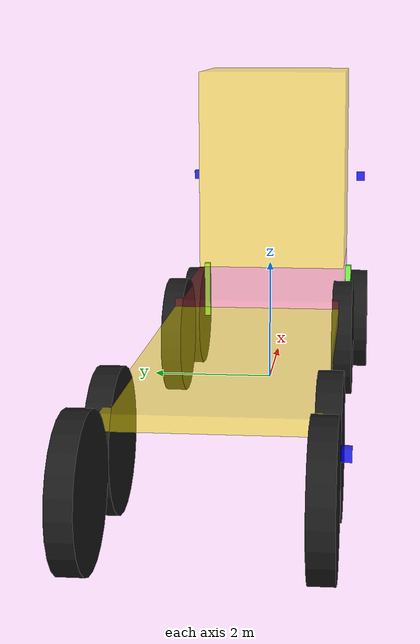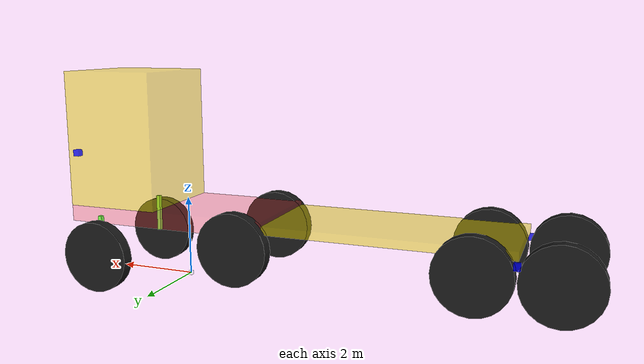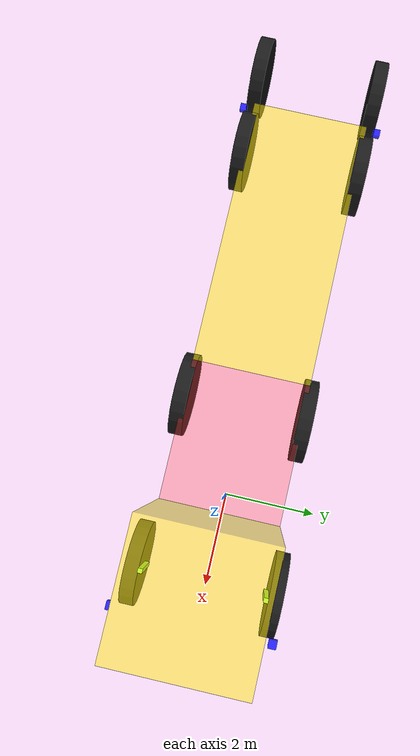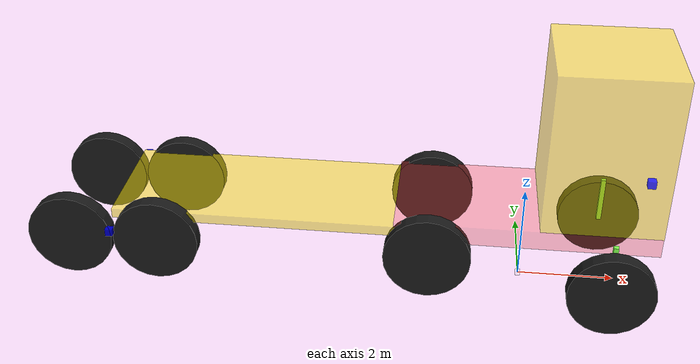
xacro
<?xml version="1.0"?>

<!-- Robot name -->
<robot name="at" xmlns:xacro="http://ros.org/wiki/xacro">

<!-- Included URDF Files -->
<xacro:include filename="$(find at_gazebo)/gazebo/at.gazebo" />

<!-- user input dimensions     -->
<xacro:property name="robot"    value="at" />
<xacro:property name="pi"       value="3.141592" />
<xacro:property name="chassis_length"   value="5.25" />
<xacro:property name="chassis_width"    value="2.495" />
<xacro:property name="chassis_height"   value="0.4" />
<xacro:property name="chassis_mass"   value="2300." />

<xacro:property name="cabinet_length"   value="2.375" />
<xacro:property name="cabinet_width"   value="${chassis_width}" />
<xacro:property name="cabinet_height"   value="3.353" />
<xacro:property name="cabinet_mass"   value="1000." />

<xacro:property name="trailer_length"   value="6" />
<xacro:property name="trailer_width"   value="${chassis_width}" />
<xacro:property name="trailer_height"   value=".2" />
<xacro:property name="trailer_mass"   value="2300." />

<xacro:property name="wheel_width"    value="0.3" />
<xacro:property name="wheel_radius"   value="0.882" />
<xacro:property name="wheel_mass"   value="100" />

<xacro:property name="trailer_wheel_width"    value="0.3" />
<xacro:property name="trailer_wheel_radius"   value="0.882" />
<xacro:property name="trailer_wheel_mass"   value="100" />

<xacro:property name="lidar_mass"   value="1" />
<xacro:property name="lidar_side"   value="0.15" />

<xacro:property name="wheel_hinge_width"   value="0.1" />
<xacro:property name="wheel_hinge_mass"   value="10" />

<xacro:property name="camera_mass"   value="1" />
<xacro:property name="camera_side"   value="0.15" />

<!-- derived dimensions -->
<xacro:property name="wheel_hinge_height"   value="${wheel_radius+0.1}" />
<xacro:property name="chassis_floor_clearance"   value="${wheel_radius+wheel_hinge_height-chassis_height}" />

<!-- ~~~~~~~~~~~~~~~~~~~~~~~ chassis AND cabinet ~~~~~~~~~~~~~~~~~~~~~~~~~~~~~~~~~~~~~~~~ -->

<!-- AT Footprint Link (AT footprint on ground)-->
<link name="${robot}_footprint">
    <visual>
        <origin xyz="0 0 0" rpy="0 0 0"/>
        <geometry>
            <box size="0.1 0.1 0.1"/>
        </geometry>
        <material name="white">
            <color rgba="1 1 1 0.1"/>
        </material>
    </visual>
</link>

<!-- AT Base Link (AT chassis)-->
<joint name="${robot}_footprint_2_base" type="fixed" >
    <parent link="${robot}_footprint"/>
    <child link="${robot}_chassis"/>
    <origin xyz="0 0 ${chassis_floor_clearance+0.5*chassis_height}" rpy="0 0 0"/>
</joint>
<link name="${robot}_chassis">
    <visual>
        <origin xyz="0 0 0" rpy="0 0 0"/>
        <geometry>
            <box size="${chassis_length} ${chassis_width} ${chassis_height}"/>
        </geometry>
        <material name="reddish">
            <color rgba="1 0.2 0.2 0.3"/>
        </material>
    </visual>

    <collision>
        <origin xyz="0 0 0" rpy="0 0 0"/>
        <geometry>
            <box size="${chassis_length} ${chassis_width} ${chassis_height}"/>
        </geometry>
    </collision>

    <inertial>
        <mass value="${chassis_mass}" />
        <origin xyz="0 0 0" rpy="0 0 0"/>
        <inertia ixx="${0.083*chassis_mass*(chassis_width*chassis_width+chassis_height*chassis_height)}"
                 ixy="0.0"
                 ixz="0.0"
                 iyy="${0.083*chassis_mass*(chassis_length*chassis_length+chassis_height*chassis_height)}"
                 iyz="0.0"
                 izz="${0.083*chassis_mass*(chassis_length*chassis_length+chassis_width*chassis_width)}"/>
    </inertial>
</link>

<!-- AT top cabinet-->
<joint name="${robot}_base_2_platform" type="fixed" >
    <parent link="${robot}_chassis"/>
    <child link="${robot}_cabinet"/>
    <origin xyz="${0.275*chassis_length} 0 ${0.5*chassis_height + 0.5*cabinet_height}" rpy="0 0 0"/>
</joint>
<link name="${robot}_cabinet">
    <visual>
        <origin xyz="0 0 0" rpy="0 0 0"/>
        <geometry>
            <box size="${cabinet_length} ${cabinet_width} ${cabinet_height}"/>
        </geometry>
        <material name="yellow">
            <color rgba="1.0 0.9 0.0 0.5"/>
        </material>
    </visual>

    <collision>
        <origin xyz="0 0 0" rpy="0 0 0"/>
        <geometry>
            <box size="${cabinet_length} ${cabinet_width} ${cabinet_height}"/>
        </geometry>
    </collision>

    <inertial>
        <mass value="${chassis_mass}" />
        <origin xyz="0 0 0" rpy="0 0 0"/>
        <inertia ixx="${0.083*cabinet_mass*(cabinet_width*cabinet_width+cabinet_height*cabinet_height)}"
                    ixy="0.0"
                    ixz="0.0"
                    iyy="${0.083*cabinet_mass*(cabinet_length*cabinet_length+cabinet_height*cabinet_height)}"
                    iyz="0.0"
                    izz="${0.083*cabinet_mass*(cabinet_length*cabinet_length+cabinet_width*cabinet_width)}" />
    </inertial>
</link>

<!-- AT trailer-->
<joint name="${robot}_trailer" type="fixed" >
    <parent link="${robot}_chassis"/>
    <child link="${robot}_trailer"/>
    <origin xyz="-${1.03*chassis_length} 0 0" rpy="0 0 0"/>
</joint>
<link name="${robot}_trailer">
    <visual>
        <origin xyz="0 0 0" rpy="0 0 0"/>
        <geometry>
            <box size="${trailer_length} ${trailer_width} ${trailer_height}"/>
        </geometry>
        <material name="yellow">
            <color rgba="1.0 0.9 0.0 0.5"/>
        </material>
    </visual>

    <collision>
        <origin xyz="0 0 0" rpy="0 0 0"/>
        <geometry>
            <box size="${trailer_length} ${trailer_width} ${trailer_height}"/>
        </geometry>
    </collision>

    <inertial>
        <mass value="${chassis_mass}" />
        <origin xyz="0 0 0" rpy="0 0 0"/>
        <inertia ixx="${0.083*trailer_mass*(trailer_width*trailer_width+trailer_height*trailer_height)}"
                    ixy="0.0"
                    ixz="0.0"
                    iyy="${0.083*trailer_mass*(trailer_length*trailer_length+trailer_height*trailer_height)}"
                    iyz="0.0"
                    izz="${0.083*trailer_mass*(trailer_length*trailer_length+trailer_width*trailer_width)}" />
    </inertial>
</link>

<!-- ~~~~~~~~~~~~~~~~~~~~~~~~~~~~~~ WHEELS ~~~~~~~~~~~~~~~~~~~~~~~~~~~~~~~~~~~~~~~~~~~~ -->

<!-- front left hinge-->
<joint name="${robot}_fl_hinge" type="revolute" >
    <parent link="${robot}_chassis"/>
    <child link="${robot}_fl_hinge"/>
    <axis xyz="0 0 1"/>
    <limit effort="10000.0" lower="${-0.3*pi}" upper="${0.3*pi}" velocity="0.5"/>
    <origin xyz="${0.5*chassis_length-wheel_radius} ${0.5*chassis_width+0.5*wheel_hinge_width} ${-0.5*wheel_hinge_height}" rpy="0 0 0"/>
</joint>
<link name="${robot}_fl_hinge">
    <visual>
        <origin xyz="0 0 0" rpy="0 0 0"/>
        <geometry>
            <box size="${wheel_hinge_width} ${wheel_hinge_width} ${wheel_hinge_height}"/>
        </geometry>
        <material name="green2">
            <color rgba="0.5 1 0.3 1"/>
        </material>
    </visual>

    <inertial>
        <mass value="${wheel_hinge_mass}" />
        <origin xyz="0 0 0" rpy="0 0 0"/>
        <inertia ixx="${0.083*chassis_mass*(wheel_hinge_width*wheel_hinge_width+wheel_hinge_height*wheel_hinge_height)}"
                    ixy="0.0"
                    ixz="0.0"
                    iyy="${0.083*chassis_mass*(wheel_hinge_width*wheel_hinge_width+wheel_hinge_height*wheel_hinge_height)}"
                    iyz="0.0"
                    izz="${0.083*chassis_mass*(wheel_hinge_width*wheel_hinge_width+wheel_hinge_width*wheel_hinge_width)}" />
    </inertial>
</link>

<!-- front left wheel-->
<joint name="${robot}_fl_wheel" type="continuous" >
    <parent link="${robot}_fl_hinge"/>
    <child link="${robot}_fl_wheel"/>
    <axis xyz="0 0 1"/>
    <origin xyz="0 ${0.5*wheel_hinge_width+0.5*wheel_width} ${-0.5*wheel_hinge_height}" rpy="${0.5*pi} 0 0"/>
</joint>
<link name="${robot}_fl_wheel">
    <visual>
        <origin xyz="0 0 0" rpy="0 0 0"/>
        <geometry>
            <cylinder length="${wheel_width}" radius="${wheel_radius}"/>
        </geometry>
        <material name="grey">
            <color rgba="0.1 0.1 0.1 1"/>
        </material>
    </visual>

    <collision>
        <origin xyz="0 0 0" rpy="0 0 0"/>
        <geometry>
            <cylinder length="${wheel_width}" radius="${wheel_radius}"/>
        </geometry>
    </collision>

    <inertial>
        <mass value="${wheel_mass}" />
        <origin xyz="0 0 0" rpy="0 0 0"/>
        <inertia ixx="${0.083*wheel_mass*(3*wheel_radius*wheel_radius*wheel_width)}"
                    ixy="0.0"
                    ixz="0.0"
                    iyy="${0.083*wheel_mass*(3*wheel_radius*wheel_radius*wheel_width)}"
                    iyz="0.0"
                    izz="${0.5*wheel_mass*wheel_radius*wheel_radius}" />
    </inertial>
</link>

<!-- front right hinge-->
<joint name="${robot}_fr_hinge" type="revolute" >
    <parent link="${robot}_chassis"/>
    <child link="${robot}_fr_hinge"/>
    <axis xyz="0 0 1"/>
    <limit effort="10000.0" lower="${-0.3*pi}" upper="${0.3*pi}" velocity="0.5"/>
    <origin xyz="${0.5*chassis_length-wheel_radius} ${-0.5*chassis_width-0.5*wheel_hinge_width} ${-0.5*wheel_hinge_height}" rpy="0 0 0"/>
</joint>
<link name="${robot}_fr_hinge">
    <visual>
        <origin xyz="0 0 0" rpy="0 0 0"/>
        <geometry>
            <box size="${wheel_hinge_width} ${wheel_hinge_width} ${wheel_hinge_height}"/>
        </geometry>
        <material name="green2">
            <color rgba="0.5 1 0.3 1"/>
        </material>
    </visual>

    <inertial>
        <mass value="${wheel_hinge_mass}" />
        <origin xyz="0 0 0" rpy="0 0 0"/>
        <inertia ixx="${0.083*chassis_mass*(wheel_hinge_width*wheel_hinge_width+wheel_hinge_height*wheel_hinge_height)}"
                    ixy="0.0"
                    ixz="0.0"
                    iyy="${0.083*chassis_mass*(wheel_hinge_width*wheel_hinge_width+wheel_hinge_height*wheel_hinge_height)}"
                    iyz="0.0"
                    izz="${0.083*chassis_mass*(wheel_hinge_width*wheel_hinge_width+wheel_hinge_width*wheel_hinge_width)}" />
    </inertial>

</link>

<!-- front right wheel-->
<joint name="${robot}_fr_wheel" type="continuous" >
    <parent link="${robot}_fr_hinge"/>
    <child link="${robot}_fr_wheel"/>
    <axis xyz="0 0 1"/>
    <origin xyz="0 ${-0.5*wheel_hinge_width-0.5*wheel_width} ${-0.5*wheel_hinge_height}" rpy="${0.5*pi} 0 0"/>
</joint>
<link name="${robot}_fr_wheel">
    <visual>
        <origin xyz="0 0 0" rpy="0 0 0"/>
        <geometry>
            <cylinder length="${wheel_width}" radius="${wheel_radius}"/>
        </geometry>
        <material name="grey">
            <color rgba="0.1 0.1 0.1 1"/>
        </material>
    </visual>

    <collision>
        <origin xyz="0 0 0" rpy="0 0 0"/>
        <geometry>
            <cylinder length="${wheel_width}" radius="${wheel_radius}"/>
        </geometry>
    </collision>

    <inertial>
        <mass value="${wheel_mass}" />
        <origin xyz="0 0 0" rpy="0 0 0"/>
        <inertia ixx="${0.083*wheel_mass*(3*wheel_radius*wheel_radius*wheel_width)}"
                    ixy="0.0"
                    ixz="0.0"
                    iyy="${0.083*wheel_mass*(3*wheel_radius*wheel_radius*wheel_width)}"
                    iyz="0.0"
                    izz="${0.5*wheel_mass*wheel_radius*wheel_radius}" />
    </inertial>
</link>

<!--~~~~~~~~~~~~~~~~~~~~~~~~~~~~~~~~~~~CHASSIS REAR WHEELS AND TRAILER WHEELS~~~~~~~~~~~~~~~~~~~~~~~~~~~~~~~~-->

<!-- chassis left wheel-->
<joint name="${robot}__rl_wheel" type="continuous" >
    <parent link="${robot}_chassis"/>
    <child link="${robot}_rl_wheel"/>
    <axis xyz="0 0 1"/>
    <origin xyz="${-0.2*chassis_length-wheel_radius} ${0.5*chassis_width+0.5*wheel_hinge_width} ${-0.5*wheel_hinge_height}" rpy="${0.5*pi} 0 0"/>
</joint>
<link name="${robot}_rl_wheel">
    <visual>
        <origin xyz="0 0 0" rpy="0 0 0"/>
        <geometry>
            <cylinder length="${wheel_width}" radius="${wheel_radius}"/>
        </geometry>
        <material name="grey">
            <color rgba="0.1 0.1 0.1 1"/>
        </material>
    </visual>

    <collision>
        <origin xyz="0 0 0" rpy="0 0 0"/>
        <geometry>
            <cylinder length="${wheel_width}" radius="${wheel_radius}"/>
        </geometry>
    </collision>

    <inertial>
        <mass value="${wheel_mass}" />
        <origin xyz="0 0 0" rpy="0 0 0"/>
        <inertia ixx="${0.083*wheel_mass*(3*wheel_radius*wheel_radius*wheel_width)}"
                    ixy="0.0"
                    ixz="0.0"
                    iyy="${0.083*wheel_mass*(3*wheel_radius*wheel_radius*wheel_width)}"
                    iyz="0.0"
                    izz="${0.5*wheel_mass*wheel_radius*wheel_radius}" />
    </inertial>
</link>

<!-- chassis right wheel-->
<joint name="${robot}_rr_wheel" type="continuous" >
    <parent link="${robot}_chassis"/>
    <child link="${robot}_rr_wheel"/>
    <axis xyz="0 0 1"/>
    <origin xyz="${-0.2*chassis_length-wheel_radius} ${-0.5*chassis_width-0.5*wheel_hinge_width} ${-0.5*wheel_hinge_height}" rpy="${0.5*pi} 0 0"/>

</joint>
<link name="${robot}_rr_wheel">
    <visual>
        <origin xyz="0 0 0" rpy="0 0 0"/>
        <geometry>
            <cylinder length="${wheel_width}" radius="${wheel_radius}"/>
        </geometry>
        <material name="grey">
            <color rgba="0.1 0.1 0.1 1"/>
        </material>
    </visual>

    <collision>
        <origin xyz="0 0 0" rpy="0 0 0"/>
        <geometry>
            <cylinder length="${wheel_width}" radius="${wheel_radius}"/>
        </geometry>
    </collision>

    <inertial>
        <mass value="${wheel_mass}" />
        <origin xyz="0 0 0" rpy="0 0 0"/>
        <inertia ixx="${0.083*wheel_mass*(3*wheel_radius*wheel_radius*wheel_width)}"
                    ixy="0.0"
                    ixz="0.0"
                    iyy="${0.083*wheel_mass*(3*wheel_radius*wheel_radius*wheel_width)}"
                    iyz="0.0"
                    izz="${0.5*wheel_mass*wheel_radius*wheel_radius}" />
    </inertial>
</link>

<!-- trailer left wheel-->
<joint name="${robot}_trailer_fl_wheel" type="continuous" >
    <parent link="${robot}_trailer"/>
    <child link="${robot}_trailer_fl_wheel"/>
    <axis xyz="0 0 1"/>
    <origin xyz="${-0.2*trailer_length-wheel_radius} ${0.5*trailer_width+0.5*wheel_hinge_width} ${-0.5*wheel_hinge_height}" rpy="${0.5*pi} 0 0"/>
</joint>
<link name="${robot}_trailer_fl_wheel">
    <visual>
        <origin xyz="0 0 0" rpy="0 0 0"/>
        <geometry>
            <cylinder length="${wheel_width}" radius="${wheel_radius}"/>
        </geometry>
        <material name="grey">
            <color rgba="0.1 0.1 0.1 1"/>
        </material>
    </visual>

    <collision>
        <origin xyz="0 0 0" rpy="0 0 0"/>
        <geometry>
            <cylinder length="${wheel_width}" radius="${wheel_radius}"/>
        </geometry>
    </collision>

    <inertial>
        <mass value="${wheel_mass}" />
        <origin xyz="0 0 0" rpy="0 0 0"/>
        <inertia ixx="${0.083*wheel_mass*(3*wheel_radius*wheel_radius*wheel_width)}"
                    ixy="0.0"
                    ixz="0.0"
                    iyy="${0.083*wheel_mass*(3*wheel_radius*wheel_radius*wheel_width)}"
                    iyz="0.0"
                    izz="${0.5*wheel_mass*wheel_radius*wheel_radius}" />
    </inertial>
</link>

<!-- trailer right wheel-->
<joint name="${robot}_trailer_fr_wheel" type="continuous" >
    <parent link="${robot}_trailer"/>
    <child link="${robot}_trailer_fr_wheel"/>
    <axis xyz="0 0 1"/>
    <origin xyz="${-0.2*trailer_length-wheel_radius} ${-0.5*trailer_width-0.5*wheel_hinge_width} ${-0.5*wheel_hinge_height}" rpy="${0.5*pi} 0 0"/>
</joint>
<link name="${robot}_trailer_fr_wheel">
    <visual>
        <origin xyz="0 0 0" rpy="0 0 0"/>
        <geometry>
            <cylinder length="${wheel_width}" radius="${wheel_radius}"/>
        </geometry>
        <material name="grey">
            <color rgba="0.1 0.1 0.1 1"/>
        </material>
    </visual>

    <collision>
        <origin xyz="0 0 0" rpy="0 0 0"/>
        <geometry>
            <cylinder length="${wheel_width}" radius="${wheel_radius}"/>
        </geometry>
    </collision>

    <inertial>
        <mass value="${wheel_mass}" />
        <origin xyz="0 0 0" rpy="0 0 0"/>
        <inertia ixx="${0.083*wheel_mass*(3*wheel_radius*wheel_radius*wheel_width)}"
                    ixy="0.0"
                    ixz="0.0"
                    iyy="${0.083*wheel_mass*(3*wheel_radius*wheel_radius*wheel_width)}"
                    iyz="0.0"
                    izz="${0.5*wheel_mass*wheel_radius*wheel_radius}" />
    </inertial>
</link>

<!-- trailer left wheel 2-->
<joint name="${robot}_trailer_rl_wheel" type="continuous" >
    <parent link="${robot}_trailer"/>
    <child link="${robot}_trailer_rl_wheel"/>
    <axis xyz="0 0 1"/>
    <origin xyz="${-0.5*trailer_length-wheel_radius} ${0.5*trailer_width+0.5*wheel_hinge_width} ${-0.5*wheel_hinge_height}" rpy="${0.5*pi} 0 0"/>
</joint>
<link name="${robot}_trailer_rl_wheel">
    <visual>
        <origin xyz="0 0 0" rpy="0 0 0"/>
        <geometry>
            <cylinder length="${wheel_width}" radius="${wheel_radius}"/>
        </geometry>
        <material name="grey">
            <color rgba="0.1 0.1 0.1 1"/>
        </material>
    </visual>

    <collision>
        <origin xyz="0 0 0" rpy="0 0 0"/>
        <geometry>
            <cylinder length="${wheel_width}" radius="${wheel_radius}"/>
        </geometry>
    </collision>

    <inertial>
        <mass value="${wheel_mass}" />
        <origin xyz="0 0 0" rpy="0 0 0"/>
        <inertia ixx="${0.083*wheel_mass*(3*wheel_radius*wheel_radius*wheel_width)}"
                    ixy="0.0"
                    ixz="0.0"
                    iyy="${0.083*wheel_mass*(3*wheel_radius*wheel_radius*wheel_width)}"
                    iyz="0.0"
                    izz="${0.5*wheel_mass*wheel_radius*wheel_radius}" />
    </inertial>
</link>

<!-- trailer right wheel 2-->
<joint name="${robot}_trailer_rr_wheel" type="continuous" >
    <parent link="${robot}_trailer"/>
    <child link="${robot}_trailer_rr_wheel"/>
    <axis xyz="0 0 1"/>
    <origin xyz="${-0.5*trailer_length-wheel_radius} ${-0.5*trailer_width-0.5*wheel_hinge_width} ${-0.5*wheel_hinge_height}" rpy="${0.5*pi} 0 0"/>
</joint>
<link name="${robot}_trailer_rr_wheel">
    <visual>
        <origin xyz="0 0 0" rpy="0 0 0"/>
        <geometry>
            <cylinder length="${wheel_width}" radius="${wheel_radius}"/>
        </geometry>
        <material name="grey">
            <color rgba="0.1 0.1 0.1 1"/>
        </material>
    </visual>

    <collision>
        <origin xyz="0 0 0" rpy="0 0 0"/>
        <geometry>
            <cylinder length="${wheel_width}" radius="${wheel_radius}"/>
        </geometry>
    </collision>

    <inertial>
        <mass value="${wheel_mass}" />
        <origin xyz="0 0 0" rpy="0 0 0"/>
        <inertia ixx="${0.083*wheel_mass*(3*wheel_radius*wheel_radius*wheel_width)}"
                    ixy="0.0"
                    ixz="0.0"
                    iyy="${0.083*wheel_mass*(3*wheel_radius*wheel_radius*wheel_width)}"
                    iyz="0.0"
                    izz="${0.5*wheel_mass*wheel_radius*wheel_radius}" />
    </inertial>
</link>

<!-- ~~~~~~~~~~~~~~~~~~~~~~~~~~~~~~ SENSORS ~~~~~~~~~~~~~~~~~~~~~~~~~~~~~~~~~~~~~~~~~~~ -->
<!-- front left lidar-->
<joint name="${robot}_fl_lidar" type="fixed" >
    <parent link="${robot}_cabinet"/>
    <child link="${robot}_fl_lidar"/>
    <origin xyz="${0.3*cabinet_length} ${0.6*cabinet_width} ${-0.7*chassis_height}" rpy="0 0 ${pi}"/>
</joint>
<link name="${robot}_fl_lidar">
    <visual>
        <origin xyz="0 0 0" rpy="0 0 0"/>
        <geometry>
            <box size="${lidar_side} ${lidar_side} ${lidar_side}"/>
        </geometry>
        <material name="blue">
            <color rgba="0.0 0.0 1. 0.8"/>
        </material>
    </visual>

    <inertial>
        <mass value="${lidar_mass}" />
        <origin xyz="0 0 0" rpy="0 0 0"/>
        <inertia ixx="${0.083*lidar_mass*(2*lidar_side*lidar_side)}"
                ixy="0.0"
                ixz="0.0"
                iyy="${0.083*lidar_mass*(2*lidar_side*lidar_side)}"
                iyz="0.0"
                izz="${0.083*lidar_mass*(2*lidar_side*lidar_side)}" />
    </inertial>
</link>

<!-- front right lidar-->
<joint name="${robot}_fr_lidar" type="fixed" >
    <parent link="${robot}_cabinet"/>
    <child link="${robot}_fr_lidar"/>
    <origin xyz="${0.3*cabinet_length} ${-0.6*cabinet_width} ${-0.7*chassis_height}" rpy="0 0 -${pi}"/>
</joint>
<link name="${robot}_fr_lidar">
    <visual>
        <origin xyz="0 0 0" rpy="0 0 0"/>
        <geometry>
            <box size="${lidar_side} ${lidar_side} ${lidar_side}"/>
        </geometry>
        <material name="blue">
            <color rgba="0.0 0.0 1. 0.8"/>
        </material>
    </visual>

    <inertial>
        <mass value="${lidar_mass}" />
        <origin xyz="0 0 0" rpy="0 0 0"/>
        <inertia ixx="${0.083*lidar_mass*(2*lidar_side*lidar_side)}"
                ixy="0.0"
                ixz="0.0"
                iyy="${0.083*lidar_mass*(2*lidar_side*lidar_side)}"
                iyz="0.0"
                izz="${0.083*lidar_mass*(2*lidar_side*lidar_side)}" />
    </inertial>
</link>

<!-- rear left lidar-->
<joint name="${robot}_rl_lidar" type="fixed" >
    <parent link="${robot}_trailer"/>
    <child link="${robot}_rl_lidar"/>
    <origin xyz="${-0.5*trailer_length} ${0.6*trailer_width} ${-0.7*trailer_height}" rpy="0 0 ${pi}"/>
</joint>
<link name="${robot}_rl_lidar">
    <visual>
        <origin xyz="0 0 0" rpy="0 0 0"/>
        <geometry>
            <box size="${lidar_side} ${lidar_side} ${lidar_side}"/>
        </geometry>
        <material name="blue">
            <color rgba="0.0 0.0 1. 0.8"/>
        </material>
    </visual>

    <inertial>
        <mass value="${lidar_mass}" />
        <origin xyz="0 0 0" rpy="0 0 0"/>
        <inertia ixx="${0.083*lidar_mass*(2*lidar_side*lidar_side)}"
                ixy="0.0"
                ixz="0.0"
                iyy="${0.083*lidar_mass*(2*lidar_side*lidar_side)}"
                iyz="0.0"
                izz="${0.083*lidar_mass*(2*lidar_side*lidar_side)}" />
    </inertial>
</link>

<!-- rear right lidar-->
<joint name="${robot}_rr_lidar" type="fixed" >
    <parent link="${robot}_trailer"/>
    <child link="${robot}_rr_lidar"/>
    <origin xyz="${-0.5*trailer_length} ${-0.6*trailer_width} ${-0.7*chassis_height}" rpy="0 0 ${pi}"/>
</joint>
<link name="${robot}_rr_lidar">
    <visual>
        <origin xyz="0 0 0" rpy="0 0 0"/>
        <geometry>
            <box size="${lidar_side} ${lidar_side} ${lidar_side}"/>
        </geometry>
        <material name="blue">
            <color rgba="0.0 0.0 1. 0.8"/>
        </material>
    </visual>

    <inertial>
        <mass value="${lidar_mass}" />
        <origin xyz="0 0 0" rpy="0 0 0"/>
        <inertia ixx="${0.083*lidar_mass*(2*lidar_side*lidar_side)}"
                ixy="0.0"
                ixz="0.0"
                iyy="${0.083*lidar_mass*(2*lidar_side*lidar_side)}"
                iyz="0.0"
                izz="${0.083*lidar_mass*(2*lidar_side*lidar_side)}" />
    </inertial>
</link>

<!-- camera-->
<joint name="${robot}_camera" type="fixed" >
    <parent link="${robot}_cabinet"/>
    <child link="${robot}_camera"/>
    <origin xyz="${0.5*cabinet_length} 0 ${0.3*cabinet_height}" rpy="0 0 ${pi}"/>
</joint>
<link name="${robot}_camera">
    <visual>
        <origin xyz="0 0 0" rpy="0 0 0"/>
        <geometry>
            <box size="${camera_side} ${camera_side} ${camera_side}"/>
        </geometry>
        <material name="blue">
            <color rgba="0.0 0.0 1. 0.8"/>
        </material>
    </visual>

    <inertial>
        <mass value="${camera_mass}" />
        <origin xyz="0 0 0" rpy="0 0 0"/>
        <inertia ixx="${0.083*camera_mass*(2*camera_side*camera_side)}"
                ixy="0.0"
                ixz="0.0"
                iyy="${0.083*camera_mass*(2*camera_side*camera_side)}"
                iyz="0.0"
                izz="${0.083*camera_mass*(2*camera_side*camera_side)}" />
    </inertial>
</link>

<!-- front lidar-->
<joint name="${robot}_front_lidar" type="fixed" >
    <parent link="${robot}_cabinet"/>
    <child link="${robot}_front_lidar"/>
    <origin xyz="${0.5*cabinet_length} 0 ${-0.5*cabinet_height}" rpy="0 0 0"/>
</joint>
<link name="${robot}_front_lidar">
    <visual>
        <origin xyz="0 0 0" rpy="0 0 0"/>
        <geometry>
            <box size="${lidar_side} ${lidar_side} ${lidar_side}"/>
        </geometry>
        <material name="blue">
            <color rgba="0.0 0.0 1. 0.8"/>
        </material>
    </visual>

    <inertial>
        <mass value="${lidar_mass}" />
        <origin xyz="0 0 0" rpy="0 0 0"/>
        <inertia ixx="${0.083*lidar_mass*(2*lidar_side*lidar_side)}"
                ixy="0.0"
                ixz="0.0"
                iyy="${0.083*lidar_mass*(2*lidar_side*lidar_side)}"
                iyz="0.0"
                izz="${0.083*lidar_mass*(2*lidar_side*lidar_side)}" />
    </inertial>
</link>

<!-- rear lidar-->
<joint name="${robot}_rear_lidar" type="fixed" >
    <parent link="${robot}_trailer"/>
    <child link="${robot}_rear_lidar"/>
    <origin xyz="${0.5*trailer_length} ${-0.5*trailer_width} ${-0.7*trailer_height}" rpy="0 0 0"/>
</joint>
<link name="${robot}_rear_lidar">
    <visual>
        <origin xyz="0 0 0" rpy="0 0 0"/>
        <geometry>
            <box size="${lidar_side} ${lidar_side} ${lidar_side}"/>
        </geometry>
        <material name="blue">
            <color rgba="0.0 0.0 1. 0.8"/>
        </material>
    </visual>

    <inertial>
        <mass value="${lidar_mass}" />
        <origin xyz="0 0 0" rpy="0 0 0"/>
        <inertia ixx="${0.083*lidar_mass*(2*lidar_side*lidar_side)}"
                ixy="0.0"
                ixz="0.0"
                iyy="${0.083*lidar_mass*(2*lidar_side*lidar_side)}"
                iyz="0.0"
                izz="${0.083*lidar_mass*(2*lidar_side*lidar_side)}" />
    </inertial>
</link>

<!-- front lidar 2-->
<joint name="${robot}_front_lidar_2" type="fixed" >
    <parent link="${robot}_cabinet"/>
    <child link="${robot}_front_lidar_2"/>
    <origin xyz="${0.5*cabinet_length} 0 ${-0.3*cabinet_height}" rpy="0 0 0"/>
</joint>
<link name="${robot}_front_lidar_2">
    <visual>
        <origin xyz="0 0 0" rpy="0 0 0"/>
        <geometry>
            <box size="${lidar_side} ${lidar_side} ${lidar_side}"/>
        </geometry>
        <material name="blue">
            <color rgba="0.0 0.0 1. 0.8"/>
        </material>
    </visual>

    <inertial>
        <mass value="${lidar_mass}" />
        <origin xyz="0 0 0" rpy="0 0 0"/>
        <inertia ixx="${0.083*lidar_mass*(2*lidar_side*lidar_side)}"
                ixy="0.0"
                ixz="0.0"
                iyy="${0.083*lidar_mass*(2*lidar_side*lidar_side)}"
                iyz="0.0"
                izz="${0.083*lidar_mass*(2*lidar_side*lidar_side)}" />
    </inertial>
</link>

<!-- ~~~~~~~~~~~~~~~~~~~~~~~~~~~~~~ TRANSMISSIONS ~~~~~~~~~~~~~~~~~~~~~~~~~~~~~~~~~~~~~~~~~~~ -->
<!-- front left steering -->
<transmission name="${robot}_fl_steer">
    <type>transmission_interface/SimpleTransmission</type>
    <joint name="${robot}_fl_hinge">
        <hardwareInterface>EffortJointInterface</hardwareInterface>
    </joint>
    <actuator name="${robot}_fl_steer_motor">
        <hardwareInterface>EffortJointInterface</hardwareInterface>
        <mechanicalReduction>1</mechanicalReduction>
    </actuator>
</transmission>

<!-- front right steering -->
<transmission name="${robot}_fr_steer">
    <type>transmission_interface/SimpleTransmission</type>
    <joint name="${robot}_fr_hinge">
        <hardwareInterface>EffortJointInterface</hardwareInterface>
    </joint>
    <actuator name="${robot}_fr_steer_motor">
        <hardwareInterface>EffortJointInterface</hardwareInterface>
        <mechanicalReduction>1</mechanicalReduction>
    </actuator>
</transmission>

<!-- front left driving -->
<transmission name="${robot}_fl_drive">
    <type>transmission_interface/SimpleTransmission</type>
    <joint name="${robot}_fl_wheel">
        <hardwareInterface>EffortJointInterface</hardwareInterface>
    </joint>
    <actuator name="${robot}_fl_drive_motor">
        <hardwareInterface>EffortJointInterface</hardwareInterface>
        <mechanicalReduction>1</mechanicalReduction>
    </actuator>
</transmission>

<!-- front right driving -->
<transmission name="${robot}_fr_drive">
    <type>transmission_interface/SimpleTransmission</type>
    <joint name="${robot}_fr_wheel">
        <hardwareInterface>EffortJointInterface</hardwareInterface>
    </joint>
    <actuator name="${robot}_fr_drive_motor">
        <hardwareInterface>EffortJointInterface</hardwareInterface>
        <mechanicalReduction>1</mechanicalReduction>
    </actuator>
</transmission>

</robot>
